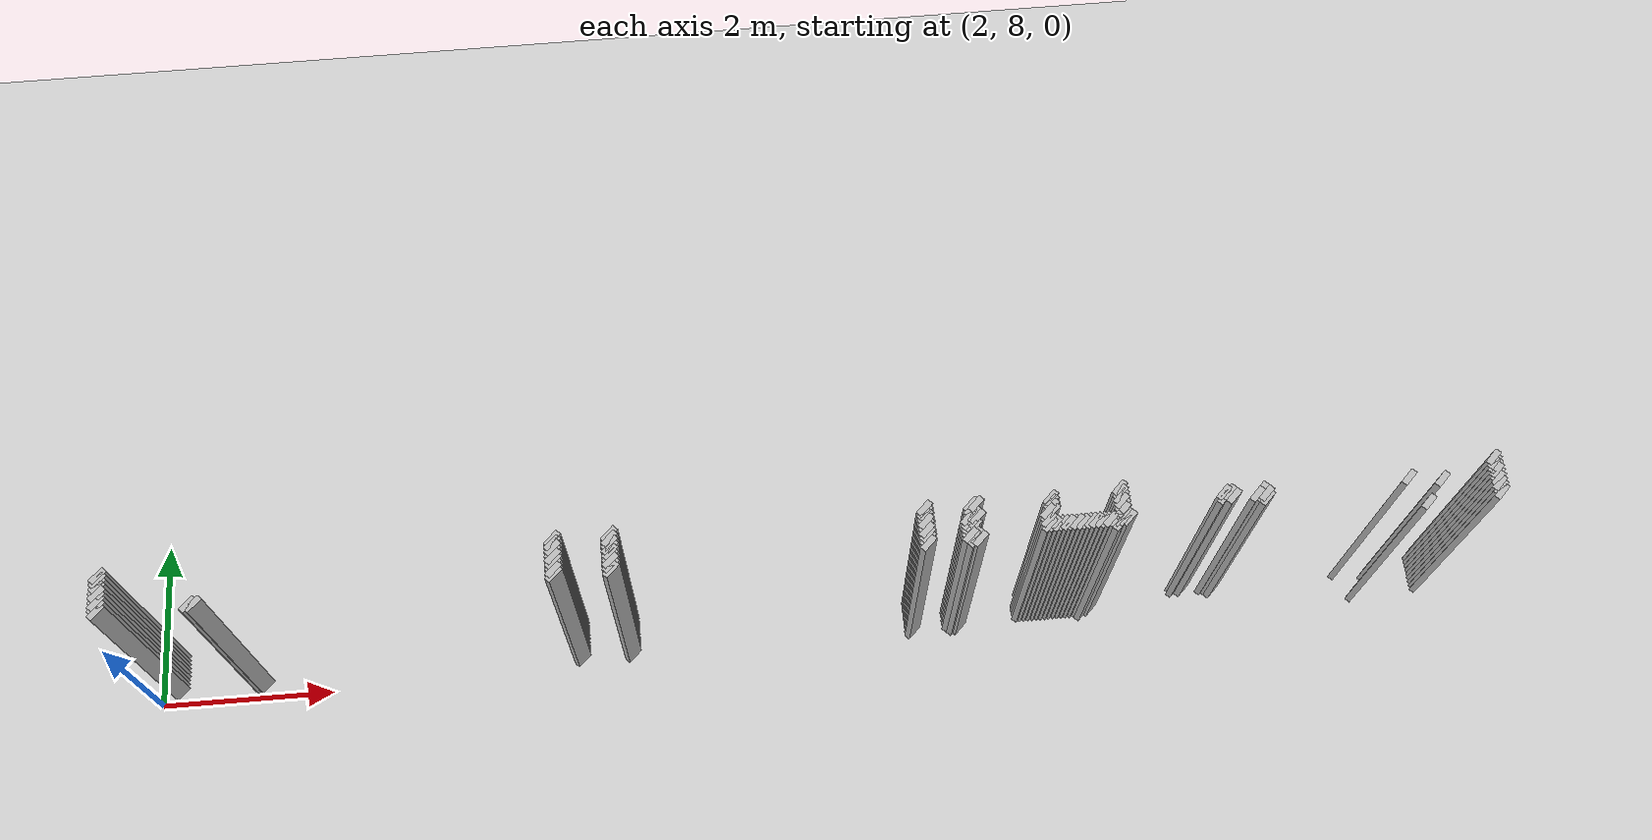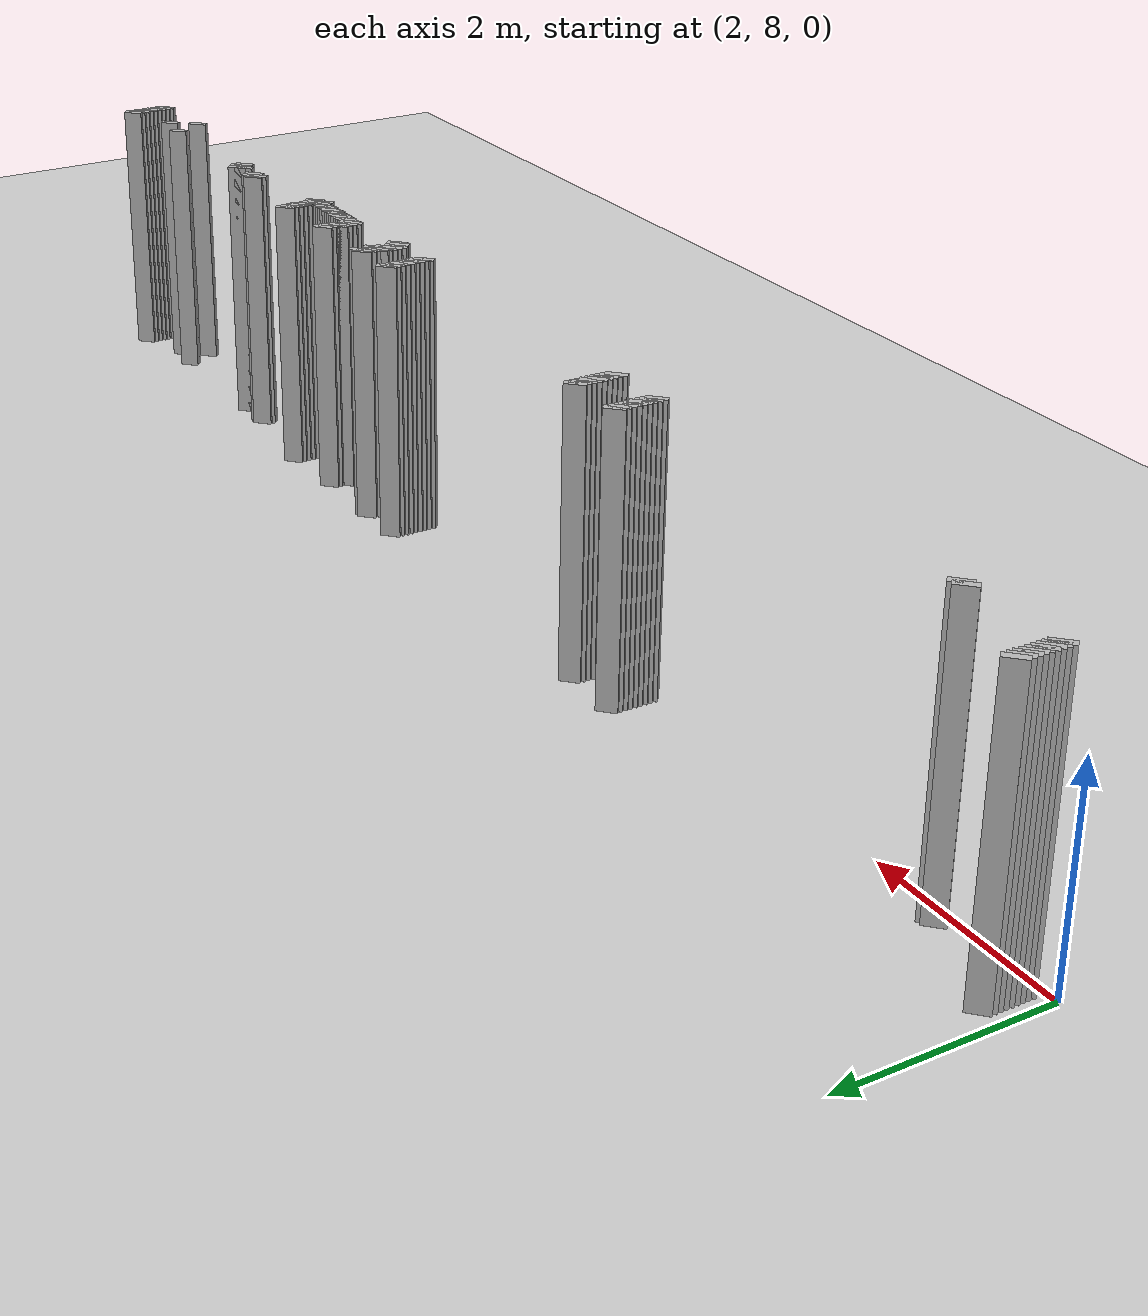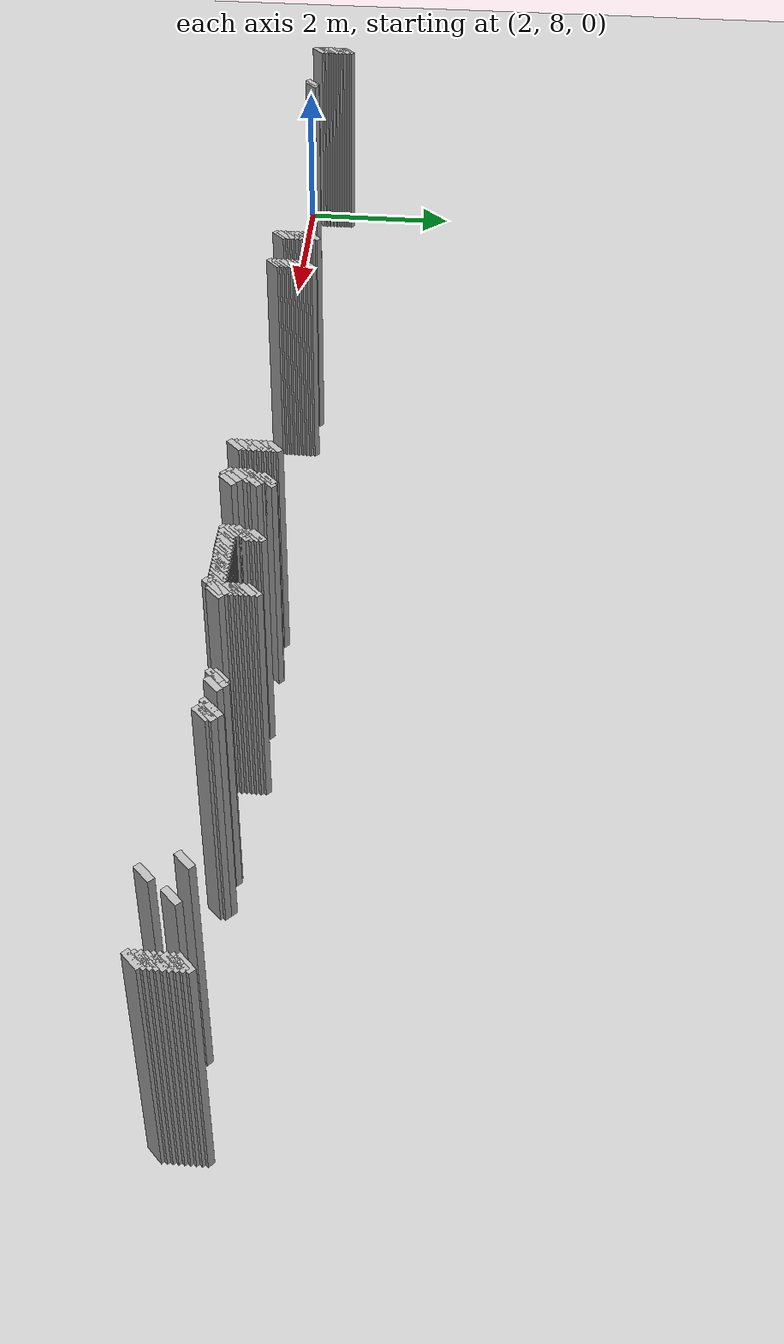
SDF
<sdf version="1.5">
 <world name="default">
  <include><uri>model://ground_plane</uri></include>
  <include><uri>model://sun</uri></include>
  <model name="grey_wall_2012">
   <static>1</static>
   <link name="link">
    <pose>13.0 8.6  1.4 0 0 -0.7853981633974483</pose>
    <collision name="collision">
     <geometry><box><size>0.07071067811865576 .2  2.8</size></box></geometry>
    </collision>
    <visual name="visual">
     <cast_shadows>0</cast_shadows>
     <geometry><box><size>0.07071067811865576 .2  2.8</size></box></geometry>
    </visual>
   </link>
  </model>
  <model name="grey_wall_2013">
   <static>1</static>
   <link name="link">
    <pose>17.05 8.6  1.4 0 0 -0.7853981633974838</pose>
    <collision name="collision">
     <geometry><box><size>0.07071067811865325 .2  2.8</size></box></geometry>
    </collision>
    <visual name="visual">
     <cast_shadows>0</cast_shadows>
     <geometry><box><size>0.07071067811865325 .2  2.8</size></box></geometry>
    </visual>
   </link>
  </model>
  <model name="grey_wall_2014">
   <static>1</static>
   <link name="link">
    <pose>2.2 8.55  1.4 0 0 -0.7853981633974572</pose>
    <collision name="collision">
     <geometry><box><size>0.07071067811865513 .2  2.8</size></box></geometry>
    </collision>
    <visual name="visual">
     <cast_shadows>0</cast_shadows>
     <geometry><box><size>0.07071067811865513 .2  2.8</size></box></geometry>
    </visual>
   </link>
  </model>
  <model name="grey_wall_2015">
   <static>1</static>
   <link name="link">
    <pose>6.95 8.55  1.4 0 0 -0.7853981633974483</pose>
    <collision name="collision">
     <geometry><box><size>0.07071067811865576 .2  2.8</size></box></geometry>
    </collision>
    <visual name="visual">
     <cast_shadows>0</cast_shadows>
     <geometry><box><size>0.07071067811865576 .2  2.8</size></box></geometry>
    </visual>
   </link>
  </model>
  <model name="grey_wall_2016">
   <static>1</static>
   <link name="link">
    <pose>7.550000000000001 8.55  1.4 0 0 -0.7853981633974483</pose>
    <collision name="collision">
     <geometry><box><size>0.07071067811865576 .2  2.8</size></box></geometry>
    </collision>
    <visual name="visual">
     <cast_shadows>0</cast_shadows>
     <geometry><box><size>0.07071067811865576 .2  2.8</size></box></geometry>
    </visual>
   </link>
  </model>
  <model name="grey_wall_2017">
   <static>1</static>
   <link name="link">
    <pose>10.9 8.55  1.4 0 0 -0.7853981633974483</pose>
    <collision name="collision">
     <geometry><box><size>0.07071067811865576 .2  2.8</size></box></geometry>
    </collision>
    <visual name="visual">
     <cast_shadows>0</cast_shadows>
     <geometry><box><size>0.07071067811865576 .2  2.8</size></box></geometry>
    </visual>
   </link>
  </model>
  <model name="grey_wall_2018">
   <static>1</static>
   <link name="link">
    <pose>11.4 8.55  1.4 0 0 -0.7853981633974483</pose>
    <collision name="collision">
     <geometry><box><size>0.07071067811865576 .2  2.8</size></box></geometry>
    </collision>
    <visual name="visual">
     <cast_shadows>0</cast_shadows>
     <geometry><box><size>0.07071067811865576 .2  2.8</size></box></geometry>
    </visual>
   </link>
  </model>
  <model name="grey_wall_2019">
   <static>1</static>
   <link name="link">
    <pose>11.450000000000001 8.55  1.4 0 0 -0.7853981633974483</pose>
    <collision name="collision">
     <geometry><box><size>0.07071067811865576 .2  2.8</size></box></geometry>
    </collision>
    <visual name="visual">
     <cast_shadows>0</cast_shadows>
     <geometry><box><size>0.07071067811865576 .2  2.8</size></box></geometry>
    </visual>
   </link>
  </model>
  <model name="grey_wall_2020">
   <static>1</static>
   <link name="link">
    <pose>12.25 8.55  1.4 0 0 -0.7853981633974483</pose>
    <collision name="collision">
     <geometry><box><size>0.07071067811865576 .2  2.8</size></box></geometry>
    </collision>
    <visual name="visual">
     <cast_shadows>0</cast_shadows>
     <geometry><box><size>0.07071067811865576 .2  2.8</size></box></geometry>
    </visual>
   </link>
  </model>
  <model name="grey_wall_2021">
   <static>1</static>
   <link name="link">
    <pose>13.0 8.55  1.4 0 0 -0.7853981633974483</pose>
    <collision name="collision">
     <geometry><box><size>0.07071067811865576 .2  2.8</size></box></geometry>
    </collision>
    <visual name="visual">
     <cast_shadows>0</cast_shadows>
     <geometry><box><size>0.07071067811865576 .2  2.8</size></box></geometry>
    </visual>
   </link>
  </model>
  <model name="grey_wall_2022">
   <static>1</static>
   <link name="link">
    <pose>17.05 8.55  1.4 0 0 -0.7853981633974838</pose>
    <collision name="collision">
     <geometry><box><size>0.07071067811865325 .2  2.8</size></box></geometry>
    </collision>
    <visual name="visual">
     <cast_shadows>0</cast_shadows>
     <geometry><box><size>0.07071067811865325 .2  2.8</size></box></geometry>
    </visual>
   </link>
  </model>
  <model name="grey_wall_2023">
   <static>1</static>
   <link name="link">
    <pose>2.2 8.5  1.4 0 0 -0.7853981633974572</pose>
    <collision name="collision">
     <geometry><box><size>0.07071067811865513 .2  2.8</size></box></geometry>
    </collision>
    <visual name="visual">
     <cast_shadows>0</cast_shadows>
     <geometry><box><size>0.07071067811865513 .2  2.8</size></box></geometry>
    </visual>
   </link>
  </model>
  <model name="grey_wall_2024">
   <static>1</static>
   <link name="link">
    <pose>6.95 8.5  1.4 0 0 -0.7853981633974483</pose>
    <collision name="collision">
     <geometry><box><size>0.07071067811865576 .2  2.8</size></box></geometry>
    </collision>
    <visual name="visual">
     <cast_shadows>0</cast_shadows>
     <geometry><box><size>0.07071067811865576 .2  2.8</size></box></geometry>
    </visual>
   </link>
  </model>
  <model name="grey_wall_2025">
   <static>1</static>
   <link name="link">
    <pose>7.550000000000001 8.5  1.4 0 0 -0.7853981633974483</pose>
    <collision name="collision">
     <geometry><box><size>0.07071067811865576 .2  2.8</size></box></geometry>
    </collision>
    <visual name="visual">
     <cast_shadows>0</cast_shadows>
     <geometry><box><size>0.07071067811865576 .2  2.8</size></box></geometry>
    </visual>
   </link>
  </model>
  <model name="grey_wall_2026">
   <static>1</static>
   <link name="link">
    <pose>10.9 8.5  1.4 0 0 -0.7853981633974483</pose>
    <collision name="collision">
     <geometry><box><size>0.07071067811865576 .2  2.8</size></box></geometry>
    </collision>
    <visual name="visual">
     <cast_shadows>0</cast_shadows>
     <geometry><box><size>0.07071067811865576 .2  2.8</size></box></geometry>
    </visual>
   </link>
  </model>
  <model name="grey_wall_2027">
   <static>1</static>
   <link name="link">
    <pose>11.4 8.5  1.4 0 0 -0.7853981633974483</pose>
    <collision name="collision">
     <geometry><box><size>0.07071067811865576 .2  2.8</size></box></geometry>
    </collision>
    <visual name="visual">
     <cast_shadows>0</cast_shadows>
     <geometry><box><size>0.07071067811865576 .2  2.8</size></box></geometry>
    </visual>
   </link>
  </model>
  <model name="grey_wall_2028">
   <static>1</static>
   <link name="link">
    <pose>12.25 8.5  1.4 0 0 -0.7853981633974483</pose>
    <collision name="collision">
     <geometry><box><size>0.07071067811865576 .2  2.8</size></box></geometry>
    </collision>
    <visual name="visual">
     <cast_shadows>0</cast_shadows>
     <geometry><box><size>0.07071067811865576 .2  2.8</size></box></geometry>
    </visual>
   </link>
  </model>
  <model name="grey_wall_2029">
   <static>1</static>
   <link name="link">
    <pose>13.0 8.5  1.4 0 0 -0.7853981633974483</pose>
    <collision name="collision">
     <geometry><box><size>0.07071067811865576 .2  2.8</size></box></geometry>
    </collision>
    <visual name="visual">
     <cast_shadows>0</cast_shadows>
     <geometry><box><size>0.07071067811865576 .2  2.8</size></box></geometry>
    </visual>
   </link>
  </model>
  <model name="grey_wall_2030">
   <static>1</static>
   <link name="link">
    <pose>17.05 8.5  1.4 0 0 -0.7853981633974838</pose>
    <collision name="collision">
     <geometry><box><size>0.07071067811865325 .2  2.8</size></box></geometry>
    </collision>
    <visual name="visual">
     <cast_shadows>0</cast_shadows>
     <geometry><box><size>0.07071067811865325 .2  2.8</size></box></geometry>
    </visual>
   </link>
  </model>
  <model name="grey_wall_2031">
   <static>1</static>
   <link name="link">
    <pose>2.2 8.450000000000001  1.4 0 0 -0.7853981633974572</pose>
    <collision name="collision">
     <geometry><box><size>0.07071067811865513 .2  2.8</size></box></geometry>
    </collision>
    <visual name="visual">
     <cast_shadows>0</cast_shadows>
     <geometry><box><size>0.07071067811865513 .2  2.8</size></box></geometry>
    </visual>
   </link>
  </model>
  <model name="grey_wall_2032">
   <static>1</static>
   <link name="link">
    <pose>6.95 8.450000000000001  1.4 0 0 -0.7853981633974483</pose>
    <collision name="collision">
     <geometry><box><size>0.07071067811865576 .2  2.8</size></box></geometry>
    </collision>
    <visual name="visual">
     <cast_shadows>0</cast_shadows>
     <geometry><box><size>0.07071067811865576 .2  2.8</size></box></geometry>
    </visual>
   </link>
  </model>
  <model name="grey_wall_2033">
   <static>1</static>
   <link name="link">
    <pose>7.550000000000001 8.450000000000001  1.4 0 0 -0.7853981633974483</pose>
    <collision name="collision">
     <geometry><box><size>0.07071067811865576 .2  2.8</size></box></geometry>
    </collision>
    <visual name="visual">
     <cast_shadows>0</cast_shadows>
     <geometry><box><size>0.07071067811865576 .2  2.8</size></box></geometry>
    </visual>
   </link>
  </model>
  <model name="grey_wall_2034">
   <static>1</static>
   <link name="link">
    <pose>10.9 8.450000000000001  1.4 0 0 -0.7853981633974483</pose>
    <collision name="collision">
     <geometry><box><size>0.07071067811865576 .2  2.8</size></box></geometry>
    </collision>
    <visual name="visual">
     <cast_shadows>0</cast_shadows>
     <geometry><box><size>0.07071067811865576 .2  2.8</size></box></geometry>
    </visual>
   </link>
  </model>
  <model name="grey_wall_2035">
   <static>1</static>
   <link name="link">
    <pose>11.4 8.450000000000001  1.4 0 0 -0.7853981633974483</pose>
    <collision name="collision">
     <geometry><box><size>0.07071067811865576 .2  2.8</size></box></geometry>
    </collision>
    <visual name="visual">
     <cast_shadows>0</cast_shadows>
     <geometry><box><size>0.07071067811865576 .2  2.8</size></box></geometry>
    </visual>
   </link>
  </model>
  <model name="grey_wall_2036">
   <static>1</static>
   <link name="link">
    <pose>12.25 8.450000000000001  1.4 0 0 -0.7853981633974483</pose>
    <collision name="collision">
     <geometry><box><size>0.07071067811865576 .2  2.8</size></box></geometry>
    </collision>
    <visual name="visual">
     <cast_shadows>0</cast_shadows>
     <geometry><box><size>0.07071067811865576 .2  2.8</size></box></geometry>
    </visual>
   </link>
  </model>
  <model name="grey_wall_2037">
   <static>1</static>
   <link name="link">
    <pose>13.0 8.450000000000001  1.4 0 0 -0.7853981633974483</pose>
    <collision name="collision">
     <geometry><box><size>0.07071067811865576 .2  2.8</size></box></geometry>
    </collision>
    <visual name="visual">
     <cast_shadows>0</cast_shadows>
     <geometry><box><size>0.07071067811865576 .2  2.8</size></box></geometry>
    </visual>
   </link>
  </model>
  <model name="grey_wall_2038">
   <static>1</static>
   <link name="link">
    <pose>14.100000000000001 8.450000000000001  1.4 0 0 -0.7853981633974483</pose>
    <collision name="collision">
     <geometry><box><size>0.07071067811865576 .2  2.8</size></box></geometry>
    </collision>
    <visual name="visual">
     <cast_shadows>0</cast_shadows>
     <geometry><box><size>0.07071067811865576 .2  2.8</size></box></geometry>
    </visual>
   </link>
  </model>
  <model name="grey_wall_2039">
   <static>1</static>
   <link name="link">
    <pose>14.15 8.450000000000001  1.4 0 0 -0.7853981633974483</pose>
    <collision name="collision">
     <geometry><box><size>0.07071067811865576 .2  2.8</size></box></geometry>
    </collision>
    <visual name="visual">
     <cast_shadows>0</cast_shadows>
     <geometry><box><size>0.07071067811865576 .2  2.8</size></box></geometry>
    </visual>
   </link>
  </model>
  <model name="grey_wall_2040">
   <static>1</static>
   <link name="link">
    <pose>14.5 8.450000000000001  1.4 0 0 -0.7853981633974483</pose>
    <collision name="collision">
     <geometry><box><size>0.07071067811865576 .2  2.8</size></box></geometry>
    </collision>
    <visual name="visual">
     <cast_shadows>0</cast_shadows>
     <geometry><box><size>0.07071067811865576 .2  2.8</size></box></geometry>
    </visual>
   </link>
  </model>
  <model name="grey_wall_2041">
   <static>1</static>
   <link name="link">
    <pose>16.1 8.450000000000001  1.4 0 0 -0.7853981633974838</pose>
    <collision name="collision">
     <geometry><box><size>0.07071067811865325 .2  2.8</size></box></geometry>
    </collision>
    <visual name="visual">
     <cast_shadows>0</cast_shadows>
     <geometry><box><size>0.07071067811865325 .2  2.8</size></box></geometry>
    </visual>
   </link>
  </model>
  <model name="grey_wall_2042">
   <static>1</static>
   <link name="link">
    <pose>17.05 8.450000000000001  1.4 0 0 -0.7853981633974838</pose>
    <collision name="collision">
     <geometry><box><size>0.07071067811865325 .2  2.8</size></box></geometry>
    </collision>
    <visual name="visual">
     <cast_shadows>0</cast_shadows>
     <geometry><box><size>0.07071067811865325 .2  2.8</size></box></geometry>
    </visual>
   </link>
  </model>
  <model name="grey_wall_2043">
   <static>1</static>
   <link name="link">
    <pose>2.2 8.4  1.4 0 0 -0.7853981633974572</pose>
    <collision name="collision">
     <geometry><box><size>0.07071067811865513 .2  2.8</size></box></geometry>
    </collision>
    <visual name="visual">
     <cast_shadows>0</cast_shadows>
     <geometry><box><size>0.07071067811865513 .2  2.8</size></box></geometry>
    </visual>
   </link>
  </model>
  <model name="grey_wall_2044">
   <static>1</static>
   <link name="link">
    <pose>6.95 8.4  1.4 0 0 -0.7853981633974483</pose>
    <collision name="collision">
     <geometry><box><size>0.07071067811865576 .2  2.8</size></box></geometry>
    </collision>
    <visual name="visual">
     <cast_shadows>0</cast_shadows>
     <geometry><box><size>0.07071067811865576 .2  2.8</size></box></geometry>
    </visual>
   </link>
  </model>
  <model name="grey_wall_2045">
   <static>1</static>
   <link name="link">
    <pose>7.550000000000001 8.4  1.4 0 0 -0.7853981633974483</pose>
    <collision name="collision">
     <geometry><box><size>0.07071067811865576 .2  2.8</size></box></geometry>
    </collision>
    <visual name="visual">
     <cast_shadows>0</cast_shadows>
     <geometry><box><size>0.07071067811865576 .2  2.8</size></box></geometry>
    </visual>
   </link>
  </model>
  <model name="grey_wall_2046">
   <static>1</static>
   <link name="link">
    <pose>10.9 8.4  1.4 0 0 -0.7853981633974483</pose>
    <collision name="collision">
     <geometry><box><size>0.07071067811865576 .2  2.8</size></box></geometry>
    </collision>
    <visual name="visual">
     <cast_shadows>0</cast_shadows>
     <geometry><box><size>0.07071067811865576 .2  2.8</size></box></geometry>
    </visual>
   </link>
  </model>
  <model name="grey_wall_2047">
   <static>1</static>
   <link name="link">
    <pose>11.350000000000001 8.4  1.4 0 0 -0.7853981633974483</pose>
    <collision name="collision">
     <geometry><box><size>0.07071067811865576 .2  2.8</size></box></geometry>
    </collision>
    <visual name="visual">
     <cast_shadows>0</cast_shadows>
     <geometry><box><size>0.07071067811865576 .2  2.8</size></box></geometry>
    </visual>
   </link>
  </model>
  <model name="grey_wall_2048">
   <static>1</static>
   <link name="link">
    <pose>11.4 8.4  1.4 0 0 -0.7853981633974483</pose>
    <collision name="collision">
     <geometry><box><size>0.07071067811865576 .2  2.8</size></box></geometry>
    </collision>
    <visual name="visual">
     <cast_shadows>0</cast_shadows>
     <geometry><box><size>0.07071067811865576 .2  2.8</size></box></geometry>
    </visual>
   </link>
  </model>
  <model name="grey_wall_2049">
   <static>1</static>
   <link name="link">
    <pose>11.450000000000001 8.4  1.4 0 0 -0.7853981633974483</pose>
    <collision name="collision">
     <geometry><box><size>0.07071067811865576 .2  2.8</size></box></geometry>
    </collision>
    <visual name="visual">
     <cast_shadows>0</cast_shadows>
     <geometry><box><size>0.07071067811865576 .2  2.8</size></box></geometry>
    </visual>
   </link>
  </model>
  <model name="grey_wall_2050">
   <static>1</static>
   <link name="link">
    <pose>12.200000000000001 8.4  1.4 0 0 -0.7853981633974483</pose>
    <collision name="collision">
     <geometry><box><size>0.07071067811865576 .2  2.8</size></box></geometry>
    </collision>
    <visual name="visual">
     <cast_shadows>0</cast_shadows>
     <geometry><box><size>0.07071067811865576 .2  2.8</size></box></geometry>
    </visual>
   </link>
  </model>
  <model name="grey_wall_2051">
   <static>1</static>
   <link name="link">
    <pose>12.25 8.4  1.4 0 0 -0.7853981633974483</pose>
    <collision name="collision">
     <geometry><box><size>0.07071067811865576 .2  2.8</size></box></geometry>
    </collision>
    <visual name="visual">
     <cast_shadows>0</cast_shadows>
     <geometry><box><size>0.07071067811865576 .2  2.8</size></box></geometry>
    </visual>
   </link>
  </model>
  <model name="grey_wall_2052">
   <static>1</static>
   <link name="link">
    <pose>13.0 8.4  1.4 0 0 -0.7853981633974483</pose>
    <collision name="collision">
     <geometry><box><size>0.07071067811865576 .2  2.8</size></box></geometry>
    </collision>
    <visual name="visual">
     <cast_shadows>0</cast_shadows>
     <geometry><box><size>0.07071067811865576 .2  2.8</size></box></geometry>
    </visual>
   </link>
  </model>
  <model name="grey_wall_2053">
   <static>1</static>
   <link name="link">
    <pose>14.100000000000001 8.4  1.4 0 0 -0.7853981633974483</pose>
    <collision name="collision">
     <geometry><box><size>0.07071067811865576 .2  2.8</size></box></geometry>
    </collision>
    <visual name="visual">
     <cast_shadows>0</cast_shadows>
     <geometry><box><size>0.07071067811865576 .2  2.8</size></box></geometry>
    </visual>
   </link>
  </model>
  <model name="grey_wall_2054">
   <static>1</static>
   <link name="link">
    <pose>14.200000000000001 8.4  1.4 0 0 -0.7853981633974483</pose>
    <collision name="collision">
     <geometry><box><size>0.07071067811865576 .2  2.8</size></box></geometry>
    </collision>
    <visual name="visual">
     <cast_shadows>0</cast_shadows>
     <geometry><box><size>0.07071067811865576 .2  2.8</size></box></geometry>
    </visual>
   </link>
  </model>
  <model name="grey_wall_2055">
   <static>1</static>
   <link name="link">
    <pose>14.450000000000001 8.4  1.4 0 0 -0.7853981633974483</pose>
    <collision name="collision">
     <geometry><box><size>0.07071067811865576 .2  2.8</size></box></geometry>
    </collision>
    <visual name="visual">
     <cast_shadows>0</cast_shadows>
     <geometry><box><size>0.07071067811865576 .2  2.8</size></box></geometry>
    </visual>
   </link>
  </model>
  <model name="grey_wall_2056">
   <static>1</static>
   <link name="link">
    <pose>14.5 8.4  1.4 0 0 -0.7853981633974483</pose>
    <collision name="collision">
     <geometry><box><size>0.07071067811865576 .2  2.8</size></box></geometry>
    </collision>
    <visual name="visual">
     <cast_shadows>0</cast_shadows>
     <geometry><box><size>0.07071067811865576 .2  2.8</size></box></geometry>
    </visual>
   </link>
  </model>
  <model name="grey_wall_2057">
   <static>1</static>
   <link name="link">
    <pose>14.55 8.4  1.4 0 0 -0.7853981633974483</pose>
    <collision name="collision">
     <geometry><box><size>0.07071067811865576 .2  2.8</size></box></geometry>
    </collision>
    <visual name="visual">
     <cast_shadows>0</cast_shadows>
     <geometry><box><size>0.07071067811865576 .2  2.8</size></box></geometry>
    </visual>
   </link>
  </model>
  <model name="grey_wall_2058">
   <static>1</static>
   <link name="link">
    <pose>16.45 8.4  1.4 0 0 -0.7853981633974838</pose>
    <collision name="collision">
     <geometry><box><size>0.07071067811865325 .2  2.8</size></box></geometry>
    </collision>
    <visual name="visual">
     <cast_shadows>0</cast_shadows>
     <geometry><box><size>0.07071067811865325 .2  2.8</size></box></geometry>
    </visual>
   </link>
  </model>
  <model name="grey_wall_2059">
   <static>1</static>
   <link name="link">
    <pose>17.05 8.4  1.4 0 0 -0.7853981633974838</pose>
    <collision name="collision">
     <geometry><box><size>0.07071067811865325 .2  2.8</size></box></geometry>
    </collision>
    <visual name="visual">
     <cast_shadows>0</cast_shadows>
     <geometry><box><size>0.07071067811865325 .2  2.8</size></box></geometry>
    </visual>
   </link>
  </model>
  <model name="grey_wall_2060">
   <static>1</static>
   <link name="link">
    <pose>2.2 8.35  1.4 0 0 -0.7853981633974572</pose>
    <collision name="collision">
     <geometry><box><size>0.07071067811865513 .2  2.8</size></box></geometry>
    </collision>
    <visual name="visual">
     <cast_shadows>0</cast_shadows>
     <geometry><box><size>0.07071067811865513 .2  2.8</size></box></geometry>
    </visual>
   </link>
  </model>
  <model name="grey_wall_2061">
   <static>1</static>
   <link name="link">
    <pose>6.95 8.35  1.4 0 0 -0.7853981633974483</pose>
    <collision name="collision">
     <geometry><box><size>0.07071067811865576 .2  2.8</size></box></geometry>
    </collision>
    <visual name="visual">
     <cast_shadows>0</cast_shadows>
     <geometry><box><size>0.07071067811865576 .2  2.8</size></box></geometry>
    </visual>
   </link>
  </model>
  <model name="grey_wall_2062">
   <static>1</static>
   <link name="link">
    <pose>7.550000000000001 8.35  1.4 0 0 -0.7853981633974483</pose>
    <collision name="collision">
     <geometry><box><size>0.07071067811865576 .2  2.8</size></box></geometry>
    </collision>
    <visual name="visual">
     <cast_shadows>0</cast_shadows>
     <geometry><box><size>0.07071067811865576 .2  2.8</size></box></geometry>
    </visual>
   </link>
  </model>
  <model name="grey_wall_2063">
   <static>1</static>
   <link name="link">
    <pose>10.9 8.35  1.4 0 0 -0.7853981633974483</pose>
    <collision name="collision">
     <geometry><box><size>0.07071067811865576 .2  2.8</size></box></geometry>
    </collision>
    <visual name="visual">
     <cast_shadows>0</cast_shadows>
     <geometry><box><size>0.07071067811865576 .2  2.8</size></box></geometry>
    </visual>
   </link>
  </model>
  <model name="grey_wall_2064">
   <static>1</static>
   <link name="link">
    <pose>11.350000000000001 8.35  1.4 0 0 -0.7853981633974483</pose>
    <collision name="collision">
     <geometry><box><size>0.07071067811865576 .2  2.8</size></box></geometry>
    </collision>
    <visual name="visual">
     <cast_shadows>0</cast_shadows>
     <geometry><box><size>0.07071067811865576 .2  2.8</size></box></geometry>
    </visual>
   </link>
  </model>
  <model name="grey_wall_2065">
   <static>1</static>
   <link name="link">
    <pose>12.200000000000001 8.35  1.4 0 0 -0.7853981633974483</pose>
    <collision name="collision">
     <geometry><box><size>0.07071067811865576 .2  2.8</size></box></geometry>
    </collision>
    <visual name="visual">
     <cast_shadows>0</cast_shadows>
     <geometry><box><size>0.07071067811865576 .2  2.8</size></box></geometry>
    </visual>
   </link>
  </model>
  <model name="grey_wall_2066">
   <static>1</static>
   <link name="link">
    <pose>13.0 8.35  1.4 0 0 -0.7853981633974483</pose>
    <collision name="collision">
     <geometry><box><size>0.07071067811865576 .2  2.8</size></box></geometry>
    </collision>
    <visual name="visual">
     <cast_shadows>0</cast_shadows>
     <geometry><box><size>0.07071067811865576 .2  2.8</size></box></geometry>
    </visual>
   </link>
  </model>
  <model name="grey_wall_2067">
   <static>1</static>
   <link name="link">
    <pose>14.55 8.35  1.4 0 0 -0.7853981633974483</pose>
    <collision name="collision">
     <geometry><box><size>0.07071067811865576 .2  2.8</size></box></geometry>
    </collision>
    <visual name="visual">
     <cast_shadows>0</cast_shadows>
     <geometry><box><size>0.07071067811865576 .2  2.8</size></box></geometry>
    </visual>
   </link>
  </model>
  <model name="grey_wall_2068">
   <static>1</static>
   <link name="link">
    <pose>17.05 8.35  1.4 0 0 -0.7853981633974838</pose>
    <collision name="collision">
     <geometry><box><size>0.07071067811865325 .2  2.8</size></box></geometry>
    </collision>
    <visual name="visual">
     <cast_shadows>0</cast_shadows>
     <geometry><box><size>0.07071067811865325 .2  2.8</size></box></geometry>
    </visual>
   </link>
  </model>
  <model name="grey_wall_2069">
   <static>1</static>
   <link name="link">
    <pose>2.2 8.3  1.4 0 0 -0.7853981633974572</pose>
    <collision name="collision">
     <geometry><box><size>0.07071067811865513 .2  2.8</size></box></geometry>
    </collision>
    <visual name="visual">
     <cast_shadows>0</cast_shadows>
     <geometry><box><size>0.07071067811865513 .2  2.8</size></box></geometry>
    </visual>
   </link>
  </model>
  <model name="grey_wall_2070">
   <static>1</static>
   <link name="link">
    <pose>6.95 8.3  1.4 0 0 -0.7853981633974483</pose>
    <collision name="collision">
     <geometry><box><size>0.07071067811865576 .2  2.8</size></box></geometry>
    </collision>
    <visual name="visual">
     <cast_shadows>0</cast_shadows>
     <geometry><box><size>0.07071067811865576 .2  2.8</size></box></geometry>
    </visual>
   </link>
  </model>
  <model name="grey_wall_2071">
   <static>1</static>
   <link name="link">
    <pose>7.550000000000001 8.3  1.4 0 0 -0.7853981633974483</pose>
    <collision name="collision">
     <geometry><box><size>0.07071067811865576 .2  2.8</size></box></geometry>
    </collision>
    <visual name="visual">
     <cast_shadows>0</cast_shadows>
     <geometry><box><size>0.07071067811865576 .2  2.8</size></box></geometry>
    </visual>
   </link>
  </model>
  <model name="grey_wall_2072">
   <static>1</static>
   <link name="link">
    <pose>10.9 8.3  1.4 0 0 -0.7853981633974483</pose>
    <collision name="collision">
     <geometry><box><size>0.07071067811865576 .2  2.8</size></box></geometry>
    </collision>
    <visual name="visual">
     <cast_shadows>0</cast_shadows>
     <geometry><box><size>0.07071067811865576 .2  2.8</size></box></geometry>
    </visual>
   </link>
  </model>
  <model name="grey_wall_2073">
   <static>1</static>
   <link name="link">
    <pose>11.350000000000001 8.3  1.4 0 0 -0.7853981633974483</pose>
    <collision name="collision">
     <geometry><box><size>0.07071067811865576 .2  2.8</size></box></geometry>
    </collision>
    <visual name="visual">
     <cast_shadows>0</cast_shadows>
     <geometry><box><size>0.07071067811865576 .2  2.8</size></box></geometry>
    </visual>
   </link>
  </model>
  <model name="grey_wall_2074">
   <static>1</static>
   <link name="link">
    <pose>11.4 8.3  1.4 0 0 -0.7853981633974483</pose>
    <collision name="collision">
     <geometry><box><size>0.07071067811865576 .2  2.8</size></box></geometry>
    </collision>
    <visual name="visual">
     <cast_shadows>0</cast_shadows>
     <geometry><box><size>0.07071067811865576 .2  2.8</size></box></geometry>
    </visual>
   </link>
  </model>
  <model name="grey_wall_2075">
   <static>1</static>
   <link name="link">
    <pose>12.200000000000001 8.3  1.4 0 0 -0.7853981633974483</pose>
    <collision name="collision">
     <geometry><box><size>0.07071067811865576 .2  2.8</size></box></geometry>
    </collision>
    <visual name="visual">
     <cast_shadows>0</cast_shadows>
     <geometry><box><size>0.07071067811865576 .2  2.8</size></box></geometry>
    </visual>
   </link>
  </model>
  <model name="grey_wall_2076">
   <static>1</static>
   <link name="link">
    <pose>13.0 8.3  1.4 0 0 -0.7853981633974483</pose>
    <collision name="collision">
     <geometry><box><size>0.07071067811865576 .2  2.8</size></box></geometry>
    </collision>
    <visual name="visual">
     <cast_shadows>0</cast_shadows>
     <geometry><box><size>0.07071067811865576 .2  2.8</size></box></geometry>
    </visual>
   </link>
  </model>
  <model name="grey_wall_2077">
   <static>1</static>
   <link name="link">
    <pose>17.05 8.3  1.4 0 0 -0.7853981633974838</pose>
    <collision name="collision">
     <geometry><box><size>0.07071067811865325 .2  2.8</size></box></geometry>
    </collision>
    <visual name="visual">
     <cast_shadows>0</cast_shadows>
     <geometry><box><size>0.07071067811865325 .2  2.8</size></box></geometry>
    </visual>
   </link>
  </model>
  <model name="grey_wall_2078">
   <static>1</static>
   <link name="link">
    <pose>2.2 8.25  1.4 0 0 -0.7853981633974572</pose>
    <collision name="collision">
     <geometry><box><size>0.07071067811865513 .2  2.8</size></box></geometry>
    </collision>
    <visual name="visual">
     <cast_shadows>0</cast_shadows>
     <geometry><box><size>0.07071067811865513 .2  2.8</size></box></geometry>
    </visual>
   </link>
  </model>
  <model name="grey_wall_2079">
   <static>1</static>
   <link name="link">
    <pose>6.95 8.25  1.4 0 0 -0.7853981633974483</pose>
    <collision name="collision">
     <geometry><box><size>0.07071067811865576 .2  2.8</size></box></geometry>
    </collision>
    <visual name="visual">
     <cast_shadows>0</cast_shadows>
     <geometry><box><size>0.07071067811865576 .2  2.8</size></box></geometry>
    </visual>
   </link>
  </model>
  <model name="grey_wall_2080">
   <static>1</static>
   <link name="link">
    <pose>7.550000000000001 8.25  1.4 0 0 -0.7853981633974483</pose>
    <collision name="collision">
     <geometry><box><size>0.07071067811865576 .2  2.8</size></box></geometry>
    </collision>
    <visual name="visual">
     <cast_shadows>0</cast_shadows>
     <geometry><box><size>0.07071067811865576 .2  2.8</size></box></geometry>
    </visual>
   </link>
  </model>
  <model name="grey_wall_2081">
   <static>1</static>
   <link name="link">
    <pose>10.9 8.25  1.4 0 0 -0.7853981633974483</pose>
    <collision name="collision">
     <geometry><box><size>0.07071067811865576 .2  2.8</size></box></geometry>
    </collision>
    <visual name="visual">
     <cast_shadows>0</cast_shadows>
     <geometry><box><size>0.07071067811865576 .2  2.8</size></box></geometry>
    </visual>
   </link>
  </model>
  <model name="grey_wall_2082">
   <static>1</static>
   <link name="link">
    <pose>11.350000000000001 8.25  1.4 0 0 -0.7853981633974483</pose>
    <collision name="collision">
     <geometry><box><size>0.07071067811865576 .2  2.8</size></box></geometry>
    </collision>
    <visual name="visual">
     <cast_shadows>0</cast_shadows>
     <geometry><box><size>0.07071067811865576 .2  2.8</size></box></geometry>
    </visual>
   </link>
  </model>
  <model name="grey_wall_2083">
   <static>1</static>
   <link name="link">
    <pose>12.200000000000001 8.25  1.4 0 0 -0.7853981633974483</pose>
    <collision name="collision">
     <geometry><box><size>0.07071067811865576 .2  2.8</size></box></geometry>
    </collision>
    <visual name="visual">
     <cast_shadows>0</cast_shadows>
     <geometry><box><size>0.07071067811865576 .2  2.8</size></box></geometry>
    </visual>
   </link>
  </model>
  <model name="grey_wall_2084">
   <static>1</static>
   <link name="link">
    <pose>12.25 8.25  1.4 0 0 -0.7853981633974483</pose>
    <collision name="collision">
     <geometry><box><size>0.07071067811865576 .2  2.8</size></box></geometry>
    </collision>
    <visual name="visual">
     <cast_shadows>0</cast_shadows>
     <geometry><box><size>0.07071067811865576 .2  2.8</size></box></geometry>
    </visual>
   </link>
  </model>
  <model name="grey_wall_2085">
   <static>1</static>
   <link name="link">
    <pose>12.3 8.25  1.4 0 0 -0.7853981633974483</pose>
    <collision name="collision">
     <geometry><box><size>0.07071067811865576 .2  2.8</size></box></geometry>
    </collision>
    <visual name="visual">
     <cast_shadows>0</cast_shadows>
     <geometry><box><size>0.07071067811865576 .2  2.8</size></box></geometry>
    </visual>
   </link>
  </model>
  <model name="grey_wall_2086">
   <static>1</static>
   <link name="link">
    <pose>12.350000000000001 8.25  1.4 0 0 -0.7853981633974483</pose>
    <collision name="collision">
     <geometry><box><size>0.07071067811865576 .2  2.8</size></box></geometry>
    </collision>
    <visual name="visual">
     <cast_shadows>0</cast_shadows>
     <geometry><box><size>0.07071067811865576 .2  2.8</size></box></geometry>
    </visual>
   </link>
  </model>
  <model name="grey_wall_2087">
   <static>1</static>
   <link name="link">
    <pose>12.4 8.25  1.4 0 0 -0.7853981633974483</pose>
    <collision name="collision">
     <geometry><box><size>0.07071067811865576 .2  2.8</size></box></geometry>
    </collision>
    <visual name="visual">
     <cast_shadows>0</cast_shadows>
     <geometry><box><size>0.07071067811865576 .2  2.8</size></box></geometry>
    </visual>
   </link>
  </model>
  <model name="grey_wall_2088">
   <static>1</static>
   <link name="link">
    <pose>12.450000000000001 8.25  1.4 0 0 -0.7853981633974483</pose>
    <collision name="collision">
     <geometry><box><size>0.07071067811865576 .2  2.8</size></box></geometry>
    </collision>
    <visual name="visual">
     <cast_shadows>0</cast_shadows>
     <geometry><box><size>0.07071067811865576 .2  2.8</size></box></geometry>
    </visual>
   </link>
  </model>
  <model name="grey_wall_2089">
   <static>1</static>
   <link name="link">
    <pose>12.5 8.25  1.4 0 0 -0.7853981633974483</pose>
    <collision name="collision">
     <geometry><box><size>0.07071067811865576 .2  2.8</size></box></geometry>
    </collision>
    <visual name="visual">
     <cast_shadows>0</cast_shadows>
     <geometry><box><size>0.07071067811865576 .2  2.8</size></box></geometry>
    </visual>
   </link>
  </model>
  <model name="grey_wall_2090">
   <static>1</static>
   <link name="link">
    <pose>12.55 8.25  1.4 0 0 -0.7853981633974483</pose>
    <collision name="collision">
     <geometry><box><size>0.07071067811865576 .2  2.8</size></box></geometry>
    </collision>
    <visual name="visual">
     <cast_shadows>0</cast_shadows>
     <geometry><box><size>0.07071067811865576 .2  2.8</size></box></geometry>
    </visual>
   </link>
  </model>
  <model name="grey_wall_2091">
   <static>1</static>
   <link name="link">
    <pose>12.600000000000001 8.25  1.4 0 0 -0.7853981633974483</pose>
    <collision name="collision">
     <geometry><box><size>0.07071067811865576 .2  2.8</size></box></geometry>
    </collision>
    <visual name="visual">
     <cast_shadows>0</cast_shadows>
     <geometry><box><size>0.07071067811865576 .2  2.8</size></box></geometry>
    </visual>
   </link>
  </model>
  <model name="grey_wall_2092">
   <static>1</static>
   <link name="link">
    <pose>12.65 8.25  1.4 0 0 -0.7853981633974483</pose>
    <collision name="collision">
     <geometry><box><size>0.07071067811865576 .2  2.8</size></box></geometry>
    </collision>
    <visual name="visual">
     <cast_shadows>0</cast_shadows>
     <geometry><box><size>0.07071067811865576 .2  2.8</size></box></geometry>
    </visual>
   </link>
  </model>
  <model name="grey_wall_2093">
   <static>1</static>
   <link name="link">
    <pose>12.700000000000001 8.25  1.4 0 0 -0.7853981633974483</pose>
    <collision name="collision">
     <geometry><box><size>0.07071067811865576 .2  2.8</size></box></geometry>
    </collision>
    <visual name="visual">
     <cast_shadows>0</cast_shadows>
     <geometry><box><size>0.07071067811865576 .2  2.8</size></box></geometry>
    </visual>
   </link>
  </model>
  <model name="grey_wall_2094">
   <static>1</static>
   <link name="link">
    <pose>12.75 8.25  1.4 0 0 -0.7853981633974483</pose>
    <collision name="collision">
     <geometry><box><size>0.07071067811865576 .2  2.8</size></box></geometry>
    </collision>
    <visual name="visual">
     <cast_shadows>0</cast_shadows>
     <geometry><box><size>0.07071067811865576 .2  2.8</size></box></geometry>
    </visual>
   </link>
  </model>
  <model name="grey_wall_2095">
   <static>1</static>
   <link name="link">
    <pose>12.8 8.25  1.4 0 0 -0.7853981633974483</pose>
    <collision name="collision">
     <geometry><box><size>0.07071067811865576 .2  2.8</size></box></geometry>
    </collision>
    <visual name="visual">
     <cast_shadows>0</cast_shadows>
     <geometry><box><size>0.07071067811865576 .2  2.8</size></box></geometry>
    </visual>
   </link>
  </model>
  <model name="grey_wall_2096">
   <static>1</static>
   <link name="link">
    <pose>12.850000000000001 8.25  1.4 0 0 -0.7853981633974483</pose>
    <collision name="collision">
     <geometry><box><size>0.07071067811865576 .2  2.8</size></box></geometry>
    </collision>
    <visual name="visual">
     <cast_shadows>0</cast_shadows>
     <geometry><box><size>0.07071067811865576 .2  2.8</size></box></geometry>
    </visual>
   </link>
  </model>
  <model name="grey_wall_2097">
   <static>1</static>
   <link name="link">
    <pose>12.9 8.25  1.4 0 0 -0.7853981633974483</pose>
    <collision name="collision">
     <geometry><box><size>0.07071067811865576 .2  2.8</size></box></geometry>
    </collision>
    <visual name="visual">
     <cast_shadows>0</cast_shadows>
     <geometry><box><size>0.07071067811865576 .2  2.8</size></box></geometry>
    </visual>
   </link>
  </model>
  <model name="grey_wall_2098">
   <static>1</static>
   <link name="link">
    <pose>12.950000000000001 8.25  1.4 0 0 -0.7853981633974483</pose>
    <collision name="collision">
     <geometry><box><size>0.07071067811865576 .2  2.8</size></box></geometry>
    </collision>
    <visual name="visual">
     <cast_shadows>0</cast_shadows>
     <geometry><box><size>0.07071067811865576 .2  2.8</size></box></geometry>
    </visual>
   </link>
  </model>
  <model name="grey_wall_2099">
   <static>1</static>
   <link name="link">
    <pose>13.0 8.25  1.4 0 0 -0.7853981633974483</pose>
    <collision name="collision">
     <geometry><box><size>0.07071067811865576 .2  2.8</size></box></geometry>
    </collision>
    <visual name="visual">
     <cast_shadows>0</cast_shadows>
     <geometry><box><size>0.07071067811865576 .2  2.8</size></box></geometry>
    </visual>
   </link>
  </model>
  <model name="grey_wall_2100">
   <static>1</static>
   <link name="link">
    <pose>13.05 8.25  1.4 0 0 -0.7853981633974483</pose>
    <collision name="collision">
     <geometry><box><size>0.07071067811865576 .2  2.8</size></box></geometry>
    </collision>
    <visual name="visual">
     <cast_shadows>0</cast_shadows>
     <geometry><box><size>0.07071067811865576 .2  2.8</size></box></geometry>
    </visual>
   </link>
  </model>
  <model name="grey_wall_2101">
   <static>1</static>
   <link name="link">
    <pose>17.05 8.25  1.4 0 0 -0.7853981633974838</pose>
    <collision name="collision">
     <geometry><box><size>0.07071067811865325 .2  2.8</size></box></geometry>
    </collision>
    <visual name="visual">
     <cast_shadows>0</cast_shadows>
     <geometry><box><size>0.07071067811865325 .2  2.8</size></box></geometry>
    </visual>
   </link>
  </model>
  <model name="grey_wall_2102">
   <static>1</static>
   <link name="link">
    <pose>2.2 8.200000000000001  1.4 0 0 -0.7853981633974572</pose>
    <collision name="collision">
     <geometry><box><size>0.07071067811865513 .2  2.8</size></box></geometry>
    </collision>
    <visual name="visual">
     <cast_shadows>0</cast_shadows>
     <geometry><box><size>0.07071067811865513 .2  2.8</size></box></geometry>
    </visual>
   </link>
  </model>
  <model name="grey_wall_2103">
   <static>1</static>
   <link name="link">
    <pose>6.95 8.200000000000001  1.4 0 0 -0.7853981633974483</pose>
    <collision name="collision">
     <geometry><box><size>0.07071067811865576 .2  2.8</size></box></geometry>
    </collision>
    <visual name="visual">
     <cast_shadows>0</cast_shadows>
     <geometry><box><size>0.07071067811865576 .2  2.8</size></box></geometry>
    </visual>
   </link>
  </model>
  <model name="grey_wall_2104">
   <static>1</static>
   <link name="link">
    <pose>7.550000000000001 8.200000000000001  1.4 0 0 -0.7853981633974483</pose>
    <collision name="collision">
     <geometry><box><size>0.07071067811865576 .2  2.8</size></box></geometry>
    </collision>
    <visual name="visual">
     <cast_shadows>0</cast_shadows>
     <geometry><box><size>0.07071067811865576 .2  2.8</size></box></geometry>
    </visual>
   </link>
  </model>
  <model name="grey_wall_2105">
   <static>1</static>
   <link name="link">
    <pose>10.9 8.200000000000001  1.4 0 0 -0.7853981633974483</pose>
    <collision name="collision">
     <geometry><box><size>0.07071067811865576 .2  2.8</size></box></geometry>
    </collision>
    <visual name="visual">
     <cast_shadows>0</cast_shadows>
     <geometry><box><size>0.07071067811865576 .2  2.8</size></box></geometry>
    </visual>
   </link>
  </model>
  <model name="grey_wall_2106">
   <static>1</static>
   <link name="link">
    <pose>11.350000000000001 8.200000000000001  1.4 0 0 -0.7853981633974483</pose>
    <collision name="collision">
     <geometry><box><size>0.07071067811865576 .2  2.8</size></box></geometry>
    </collision>
    <visual name="visual">
     <cast_shadows>0</cast_shadows>
     <geometry><box><size>0.07071067811865576 .2  2.8</size></box></geometry>
    </visual>
   </link>
  </model>
  <model name="grey_wall_2107">
   <static>1</static>
   <link name="link">
    <pose>11.4 8.200000000000001  1.4 0 0 -0.7853981633974483</pose>
    <collision name="collision">
     <geometry><box><size>0.07071067811865576 .2  2.8</size></box></geometry>
    </collision>
    <visual name="visual">
     <cast_shadows>0</cast_shadows>
     <geometry><box><size>0.07071067811865576 .2  2.8</size></box></geometry>
    </visual>
   </link>
  </model>
  <model name="grey_wall_2108">
   <static>1</static>
   <link name="link">
    <pose>12.950000000000001 8.200000000000001  1.4 0 0 -0.7853981633974483</pose>
    <collision name="collision">
     <geometry><box><size>0.07071067811865576 .2  2.8</size></box></geometry>
    </collision>
    <visual name="visual">
     <cast_shadows>0</cast_shadows>
     <geometry><box><size>0.07071067811865576 .2  2.8</size></box></geometry>
    </visual>
   </link>
  </model>
  <model name="grey_wall_2109">
   <static>1</static>
   <link name="link">
    <pose>17.05 8.200000000000001  1.4 0 0 -0.7853981633974838</pose>
    <collision name="collision">
     <geometry><box><size>0.07071067811865325 .2  2.8</size></box></geometry>
    </collision>
    <visual name="visual">
     <cast_shadows>0</cast_shadows>
     <geometry><box><size>0.07071067811865325 .2  2.8</size></box></geometry>
    </visual>
   </link>
  </model>
  <model name="grey_wall_2110">
   <static>1</static>
   <link name="link">
    <pose>2.2 8.15  1.4 0 0 -0.7853981633974572</pose>
    <collision name="collision">
     <geometry><box><size>0.07071067811865513 .2  2.8</size></box></geometry>
    </collision>
    <visual name="visual">
     <cast_shadows>0</cast_shadows>
     <geometry><box><size>0.07071067811865513 .2  2.8</size></box></geometry>
    </visual>
   </link>
  </model>
  <model name="grey_wall_2111">
   <static>1</static>
   <link name="link">
    <pose>3.1500000000000004 8.15  1.4 0 0 -0.7853981633974572</pose>
    <collision name="collision">
     <geometry><box><size>0.07071067811865513 .2  2.8</size></box></geometry>
    </collision>
    <visual name="visual">
     <cast_shadows>0</cast_shadows>
     <geometry><box><size>0.07071067811865513 .2  2.8</size></box></geometry>
    </visual>
   </link>
  </model>
  <model name="grey_wall_2112">
   <static>1</static>
   <link name="link">
    <pose>3.2 8.15  1.4 0 0 -0.7853981633974572</pose>
    <collision name="collision">
     <geometry><box><size>0.07071067811865513 .2  2.8</size></box></geometry>
    </collision>
    <visual name="visual">
     <cast_shadows>0</cast_shadows>
     <geometry><box><size>0.07071067811865513 .2  2.8</size></box></geometry>
    </visual>
   </link>
  </model>
  <model name="grey_wall_2113">
   <static>1</static>
   <link name="link">
    <pose>6.95 8.15  1.4 0 0 -0.7853981633974483</pose>
    <collision name="collision">
     <geometry><box><size>0.07071067811865576 .2  2.8</size></box></geometry>
    </collision>
    <visual name="visual">
     <cast_shadows>0</cast_shadows>
     <geometry><box><size>0.07071067811865576 .2  2.8</size></box></geometry>
    </visual>
   </link>
  </model>
  <model name="grey_wall_2114">
   <static>1</static>
   <link name="link">
    <pose>7.550000000000001 8.15  1.4 0 0 -0.7853981633974483</pose>
    <collision name="collision">
     <geometry><box><size>0.07071067811865576 .2  2.8</size></box></geometry>
    </collision>
    <visual name="visual">
     <cast_shadows>0</cast_shadows>
     <geometry><box><size>0.07071067811865576 .2  2.8</size></box></geometry>
    </visual>
   </link>
  </model>
  <model name="grey_wall_2115">
   <static>1</static>
   <link name="link">
    <pose>10.9 8.15  1.4 0 0 -0.7853981633974483</pose>
    <collision name="collision">
     <geometry><box><size>0.07071067811865576 .2  2.8</size></box></geometry>
    </collision>
    <visual name="visual">
     <cast_shadows>0</cast_shadows>
     <geometry><box><size>0.07071067811865576 .2  2.8</size></box></geometry>
    </visual>
   </link>
  </model>
  <model name="grey_wall_2116">
   <static>1</static>
   <link name="link">
    <pose>11.4 8.15  1.4 0 0 -0.7853981633974483</pose>
    <collision name="collision">
     <geometry><box><size>0.07071067811865576 .2  2.8</size></box></geometry>
    </collision>
    <visual name="visual">
     <cast_shadows>0</cast_shadows>
     <geometry><box><size>0.07071067811865576 .2  2.8</size></box></geometry>
    </visual>
   </link>
  </model>
  <model name="grey_wall_2117">
   <static>1</static>
   <link name="link">
    <pose>11.450000000000001 8.15  1.4 0 0 -0.7853981633974483</pose>
    <collision name="collision">
     <geometry><box><size>0.07071067811865576 .2  2.8</size></box></geometry>
    </collision>
    <visual name="visual">
     <cast_shadows>0</cast_shadows>
     <geometry><box><size>0.07071067811865576 .2  2.8</size></box></geometry>
    </visual>
   </link>
  </model>
  <model name="grey_wall_2118">
   <static>1</static>
   <link name="link">
    <pose>16.25 8.15  1.4 0 0 -0.7853981633974838</pose>
    <collision name="collision">
     <geometry><box><size>0.07071067811865325 .2  2.8</size></box></geometry>
    </collision>
    <visual name="visual">
     <cast_shadows>0</cast_shadows>
     <geometry><box><size>0.07071067811865325 .2  2.8</size></box></geometry>
    </visual>
   </link>
  </model>
 </world>
</sdf>
